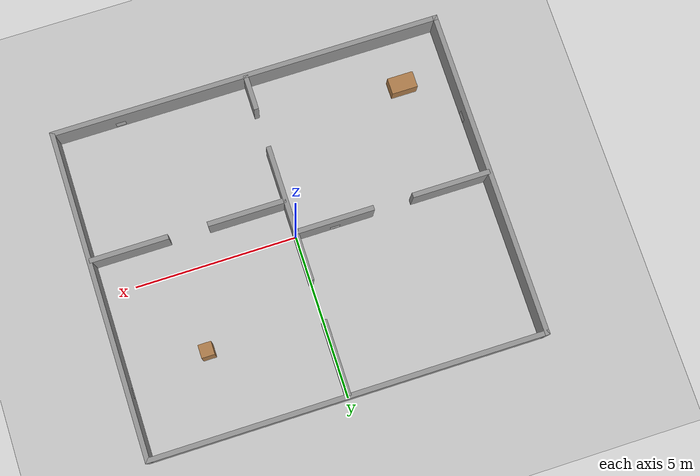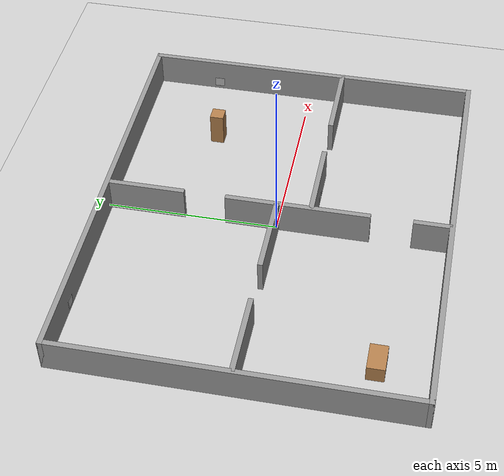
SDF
<?xml version="1.0"?>
<!-- Generated by scripts/generate_world.py -->
<sdf version="1.6">
  <world name="sar_building">
    <include><uri>model://sun</uri></include>
    <include><uri>model://ground_plane</uri></include>

    <physics type="ode">
      <real_time_update_rate>1000.0</real_time_update_rate>
      <max_step_size>0.001</max_step_size>
    </physics>

    <gui>
      <camera name="user_camera">
        <pose>0 0 17 0 1.5707 0</pose>
      </camera>
    </gui>

    <model name="building">
      <static>true</static>
      <link name="outer_n">
        <pose>0.0 5.0 0.5 0 0 0</pose>
        <collision name="collision"><geometry><box><size>12.15 0.15 1.0</size></box></geometry></collision>
        <visual name="visual">
          <geometry><box><size>12.15 0.15 1.0</size></box></geometry>
          <material><script><uri>file://media/materials/scripts/gazebo.material</uri><name>Gazebo/Grey</name></script></material>
        </visual>
      </link>
      <link name="outer_s">
        <pose>0.0 -5.0 0.5 0 0 0</pose>
        <collision name="collision"><geometry><box><size>12.15 0.15 1.0</size></box></geometry></collision>
        <visual name="visual">
          <geometry><box><size>12.15 0.15 1.0</size></box></geometry>
          <material><script><uri>file://media/materials/scripts/gazebo.material</uri><name>Gazebo/Grey</name></script></material>
        </visual>
      </link>
      <link name="outer_e">
        <pose>6.0 0.0 0.5 0 0 0</pose>
        <collision name="collision"><geometry><box><size>0.15 10.15 1.0</size></box></geometry></collision>
        <visual name="visual">
          <geometry><box><size>0.15 10.15 1.0</size></box></geometry>
          <material><script><uri>file://media/materials/scripts/gazebo.material</uri><name>Gazebo/Grey</name></script></material>
        </visual>
      </link>
      <link name="outer_w">
        <pose>-6.0 0.0 0.5 0 0 0</pose>
        <collision name="collision"><geometry><box><size>0.15 10.15 1.0</size></box></geometry></collision>
        <visual name="visual">
          <geometry><box><size>0.15 10.15 1.0</size></box></geometry>
          <material><script><uri>file://media/materials/scripts/gazebo.material</uri><name>Gazebo/Grey</name></script></material>
        </visual>
      </link>
      <link name="mid_v_top">
        <pose>0.0 3.85 0.5 0 0 0</pose>
        <collision name="collision"><geometry><box><size>0.15 2.3 1.0</size></box></geometry></collision>
        <visual name="visual">
          <geometry><box><size>0.15 2.3 1.0</size></box></geometry>
          <material><script><uri>file://media/materials/scripts/gazebo.material</uri><name>Gazebo/Grey</name></script></material>
        </visual>
      </link>
      <link name="mid_v_mid">
        <pose>0.0 -0.6 0.5 0 0 0</pose>
        <collision name="collision"><geometry><box><size>0.15 4.2 1.0</size></box></geometry></collision>
        <visual name="visual">
          <geometry><box><size>0.15 4.2 1.0</size></box></geometry>
          <material><script><uri>file://media/materials/scripts/gazebo.material</uri><name>Gazebo/Grey</name></script></material>
        </visual>
      </link>
      <link name="mid_v_bot">
        <pose>0.0 -4.45 0.5 0 0 0</pose>
        <collision name="collision"><geometry><box><size>0.15 1.1 1.0</size></box></geometry></collision>
        <visual name="visual">
          <geometry><box><size>0.15 1.1 1.0</size></box></geometry>
          <material><script><uri>file://media/materials/scripts/gazebo.material</uri><name>Gazebo/Grey</name></script></material>
        </visual>
      </link>
      <link name="left_h_w">
        <pose>-4.8 0.0 0.5 0 0 0</pose>
        <collision name="collision"><geometry><box><size>2.4 0.15 1.0</size></box></geometry></collision>
        <visual name="visual">
          <geometry><box><size>2.4 0.15 1.0</size></box></geometry>
          <material><script><uri>file://media/materials/scripts/gazebo.material</uri><name>Gazebo/Grey</name></script></material>
        </visual>
      </link>
      <link name="left_h_e">
        <pose>-1.2 0.0 0.5 0 0 0</pose>
        <collision name="collision"><geometry><box><size>2.4 0.15 1.0</size></box></geometry></collision>
        <visual name="visual">
          <geometry><box><size>2.4 0.15 1.0</size></box></geometry>
          <material><script><uri>file://media/materials/scripts/gazebo.material</uri><name>Gazebo/Grey</name></script></material>
        </visual>
      </link>
      <link name="right_h_w">
        <pose>1.2 -1.0 0.5 0 0 0</pose>
        <collision name="collision"><geometry><box><size>2.4 0.15 1.0</size></box></geometry></collision>
        <visual name="visual">
          <geometry><box><size>2.4 0.15 1.0</size></box></geometry>
          <material><script><uri>file://media/materials/scripts/gazebo.material</uri><name>Gazebo/Grey</name></script></material>
        </visual>
      </link>
      <link name="right_h_e">
        <pose>4.8 -1.0 0.5 0 0 0</pose>
        <collision name="collision"><geometry><box><size>2.4 0.15 1.0</size></box></geometry></collision>
        <visual name="visual">
          <geometry><box><size>2.4 0.15 1.0</size></box></geometry>
          <material><script><uri>file://media/materials/scripts/gazebo.material</uri><name>Gazebo/Grey</name></script></material>
        </visual>
      </link>
      <link name="pillar">
        <pose>3.5 2.5 0.5 0 0 0</pose>
        <collision name="collision"><geometry><box><size>0.4 0.4 1.0</size></box></geometry></collision>
        <visual name="visual">
          <geometry><box><size>0.4 0.4 1.0</size></box></geometry>
          <material><script><uri>file://media/materials/scripts/gazebo.material</uri><name>Gazebo/Wood</name></script></material>
        </visual>
      </link>
      <link name="crate">
        <pose>-4.5 -3.5 0.25 0 0 0</pose>
        <collision name="collision"><geometry><box><size>0.8 0.5 0.5</size></box></geometry></collision>
        <visual name="visual">
          <geometry><box><size>0.8 0.5 0.5</size></box></geometry>
          <material><script><uri>file://media/materials/scripts/gazebo.material</uri><name>Gazebo/Wood</name></script></material>
        </visual>
      </link>
    </model>

    <include>
      <name>aruco_0</name>
      <uri>model://aruco_0</uri>
      <pose>-4.000 4.920 0.25 0 0 1.570796</pose>
    </include>
    <include>
      <name>aruco_1</name>
      <uri>model://aruco_1</uri>
      <pose>5.920 3.000 0.25 0 0 0.000000</pose>
    </include>
    <include>
      <name>aruco_2</name>
      <uri>model://aruco_2</uri>
      <pose>4.000 -4.920 0.25 0 0 1.570796</pose>
    </include>
    <include>
      <name>aruco_3</name>
      <uri>model://aruco_3</uri>
      <pose>-5.920 -2.000 0.25 0 0 0.000000</pose>
    </include>
    <include>
      <name>aruco_4</name>
      <uri>model://aruco_4</uri>
      <pose>1.200 -1.080 0.25 0 0 1.570796</pose>
    </include>
    <include>
      <name>aruco_5</name>
      <uri>model://aruco_5</uri>
      <pose>-1.200 0.080 0.25 0 0 1.570796</pose>
    </include>
  </world>
</sdf>

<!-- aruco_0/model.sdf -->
<sdf version="1.6">
  <model name="aruco_0">
    <static>true</static>
    <link name="link">
      <collision name="collision">
        <geometry><box><size>0.01 0.3 0.3</size></box></geometry>
      </collision>
      <visual name="visual">
        <geometry><box><size>0.01 0.3 0.3</size></box></geometry>
        <material>
          <script>
            <uri>model://aruco_0/materials/scripts</uri>
            <uri>model://aruco_0/materials/textures</uri>
            <name>ArucoMarker/Id0</name>
          </script>
        </material>
      </visual>
    </link>
  </model>
</sdf>

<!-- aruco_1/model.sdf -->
<sdf version="1.6">
  <model name="aruco_1">
    <static>true</static>
    <link name="link">
      <collision name="collision">
        <geometry><box><size>0.01 0.3 0.3</size></box></geometry>
      </collision>
      <visual name="visual">
        <geometry><box><size>0.01 0.3 0.3</size></box></geometry>
        <material>
          <script>
            <uri>model://aruco_1/materials/scripts</uri>
            <uri>model://aruco_1/materials/textures</uri>
            <name>ArucoMarker/Id1</name>
          </script>
        </material>
      </visual>
    </link>
  </model>
</sdf>

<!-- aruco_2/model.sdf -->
<sdf version="1.6">
  <model name="aruco_2">
    <static>true</static>
    <link name="link">
      <collision name="collision">
        <geometry><box><size>0.01 0.3 0.3</size></box></geometry>
      </collision>
      <visual name="visual">
        <geometry><box><size>0.01 0.3 0.3</size></box></geometry>
        <material>
          <script>
            <uri>model://aruco_2/materials/scripts</uri>
            <uri>model://aruco_2/materials/textures</uri>
            <name>ArucoMarker/Id2</name>
          </script>
        </material>
      </visual>
    </link>
  </model>
</sdf>

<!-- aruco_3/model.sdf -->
<sdf version="1.6">
  <model name="aruco_3">
    <static>true</static>
    <link name="link">
      <collision name="collision">
        <geometry><box><size>0.01 0.3 0.3</size></box></geometry>
      </collision>
      <visual name="visual">
        <geometry><box><size>0.01 0.3 0.3</size></box></geometry>
        <material>
          <script>
            <uri>model://aruco_3/materials/scripts</uri>
            <uri>model://aruco_3/materials/textures</uri>
            <name>ArucoMarker/Id3</name>
          </script>
        </material>
      </visual>
    </link>
  </model>
</sdf>

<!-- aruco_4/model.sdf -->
<sdf version="1.6">
  <model name="aruco_4">
    <static>true</static>
    <link name="link">
      <collision name="collision">
        <geometry><box><size>0.01 0.3 0.3</size></box></geometry>
      </collision>
      <visual name="visual">
        <geometry><box><size>0.01 0.3 0.3</size></box></geometry>
        <material>
          <script>
            <uri>model://aruco_4/materials/scripts</uri>
            <uri>model://aruco_4/materials/textures</uri>
            <name>ArucoMarker/Id4</name>
          </script>
        </material>
      </visual>
    </link>
  </model>
</sdf>

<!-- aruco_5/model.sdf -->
<sdf version="1.6">
  <model name="aruco_5">
    <static>true</static>
    <link name="link">
      <collision name="collision">
        <geometry><box><size>0.01 0.3 0.3</size></box></geometry>
      </collision>
      <visual name="visual">
        <geometry><box><size>0.01 0.3 0.3</size></box></geometry>
        <material>
          <script>
            <uri>model://aruco_5/materials/scripts</uri>
            <uri>model://aruco_5/materials/textures</uri>
            <name>ArucoMarker/Id5</name>
          </script>
        </material>
      </visual>
    </link>
  </model>
</sdf>
